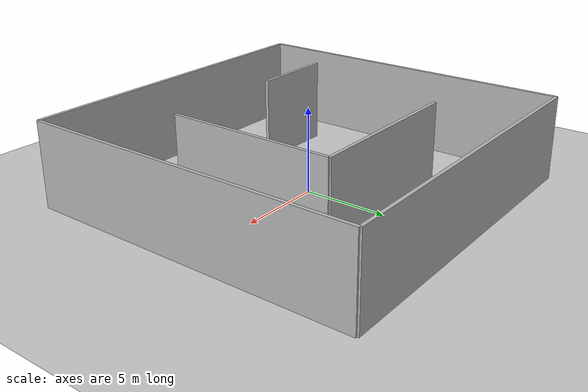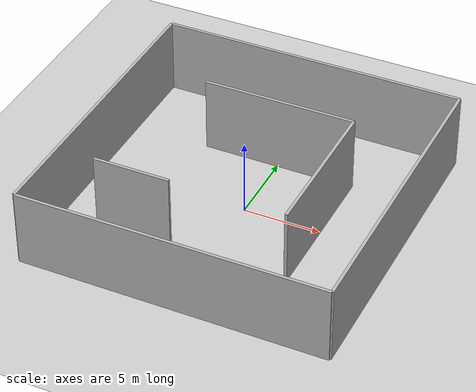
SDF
<?xml version="1.0" ?>
<sdf version="1.5">
  <world name="default">
    <!-- A global light source -->
    <include>
      <uri>model://sun</uri>
    </include>

    <!-- A ground plane -->
    <include>
      <uri>model://ground_plane</uri>
    </include>

    <physics name='default_physics' default='0' type='ode'>
      <gravity>0 0 -9.8066</gravity>
      <ode>
        <solver>
          <type>quick</type>
          <iters>10</iters>
          <sor>1.3</sor>
          <use_dynamic_moi_rescaling>0</use_dynamic_moi_rescaling>
        </solver>
        <constraints>
          <cfm>0</cfm>
          <erp>0.2</erp>
          <contact_max_correcting_vel>100</contact_max_correcting_vel>
          <contact_surface_layer>0.001</contact_surface_layer>
        </constraints>
      </ode>
      <max_step_size>0.004</max_step_size>
      <real_time_factor>1</real_time_factor>
      <real_time_update_rate>250</real_time_update_rate>
      <magnetic_field>6.0e-6 2.3e-5 -4.2e-5</magnetic_field>
    </physics>

    <!-- Tường mê cung (các khối hộp) -->
    <!-- Viền ngoài -->
    <model name="outer_wall_north">
      <static>true</static>
      <pose>0 10 2.5 0 0 0</pose>
      <link name="link">
        <collision name="collision">
          <geometry>
            <box><size>20 0.2 5</size></box>
          </geometry>
        </collision>
        <visual name="visual">
          <geometry>
            <box><size>20 0.2 5</size></box>
          </geometry>
        </visual>
      </link>
    </model>

    <model name="outer_wall_south">
      <static>true</static>
      <pose>0 -10 2.5 0 0 0</pose>
      <link name="link">
        <collision name="collision">
          <geometry>
            <box><size>20 0.2 5</size></box>
          </geometry>
        </collision>
        <visual name="visual">
          <geometry>
            <box><size>20 0.2 5</size></box>
          </geometry>
        </visual>
      </link>
    </model>

    <model name="outer_wall_east">
      <static>true</static>
      <pose>10 0 2.5 0 0 0</pose>
      <link name="link">
        <collision name="collision">
          <geometry>
            <box><size>0.2 20 5</size></box>
          </geometry>
        </collision>
        <visual name="visual">
          <geometry>
            <box><size>0.2 20 5</size></box>
          </geometry>
        </visual>
      </link>
    </model>

    <model name="outer_wall_west">
      <static>true</static>
      <pose>-10 0 2.5 0 0 0</pose>
      <link name="link">
        <collision name="collision">
          <geometry>
            <box><size>0.2 20 5</size></box>
          </geometry>
        </collision>
        <visual name="visual">
          <geometry>
            <box><size>0.2 20 5</size></box>
          </geometry>
        </visual>
      </link>
    </model>

    <!-- Tường bên trong (tạo đường đi) -->
    <model name="inner_wall_1">
      <static>true</static>
      <pose>0 5 2.5 0 0 0</pose>
      <link name="link">
        <collision name="collision">
          <geometry>
            <box><size>10 0.2 5</size></box>
          </geometry>
        </collision>
        <visual name="visual">
          <geometry>
            <box><size>10 0.2 5</size></box>
          </geometry>
        </visual>
      </link>
    </model>

    <model name="inner_wall_2">
      <static>true</static>
      <pose>5 0 2.5 0 0 0</pose>
      <link name="link">
        <collision name="collision">
          <geometry>
            <box><size>0.2 10 5</size></box>
          </geometry>
        </collision>
        <visual name="visual">
          <geometry>
            <box><size>0.2 10 5</size></box>
          </geometry>
        </visual>
      </link>
    </model>

    <model name="inner_wall_3">
      <static>true</static>
      <pose>-5 -5 2.5 0 0 0</pose>
      <link name="link">
        <collision name="collision">
          <geometry>
            <box><size>5 0.2 5</size></box>
          </geometry>
        </collision>
        <visual name="visual">
          <geometry>
            <box><size>5 0.2 5</size></box>
          </geometry>
        </visual>
      </link>
    </model>
  </world>
</sdf>
